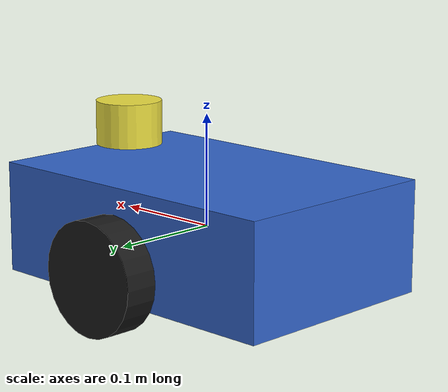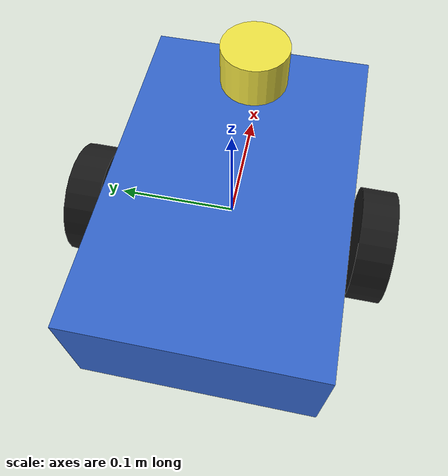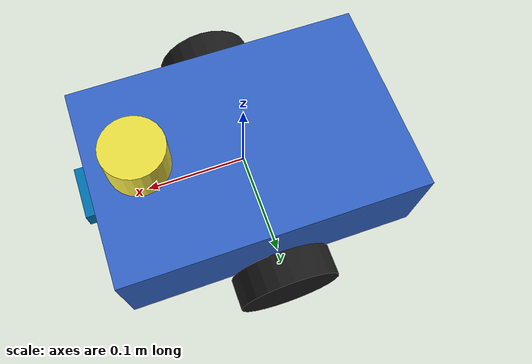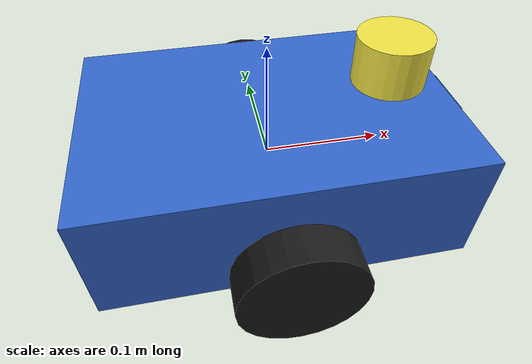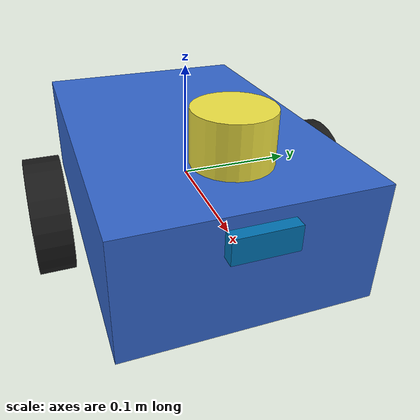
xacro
<?xml version="1.0"?>
<robot name="mi_robot" xmlns:xacro="http://www.ros.org/wiki/xacro">

  <xacro:property name="rueda_radio" value="0.05"/>
  <xacro:property name="rueda_ancho" value="0.03"/>
  <xacro:property name="separacion_ruedas" value="0.25"/>

  <link name="base_link">
    <visual>
      <geometry><box size="0.3 0.2 0.1"/></geometry>
      <material name="azul"><color rgba="0.2 0.4 0.8 1"/></material>
    </visual>
    <collision>
      <geometry><box size="0.3 0.2 0.1"/></geometry>
    </collision>
    <inertial>
      <mass value="1.0"/>
      <inertia ixx="0.01" ixy="0.0" ixz="0.0" iyy="0.01" iyz="0.0" izz="0.01"/>
    </inertial>
  </link>

  <xacro:macro name="rueda" params="prefijo y_signo">
    <link name="rueda_${prefijo}">
      <visual>
        <geometry><cylinder radius="${rueda_radio}" length="${rueda_ancho}"/></geometry>
        <material name="negro"><color rgba="0.1 0.1 0.1 1"/></material>
      </visual>
      <collision>
        <geometry><cylinder radius="${rueda_radio}" length="${rueda_ancho}"/></geometry>
      </collision>
      <inertial>
        <mass value="0.1"/>
        <inertia ixx="0.0005" ixy="0.0" ixz="0.0" iyy="0.0005" iyz="0.0" izz="0.0005"/>
      </inertial>
    </link>

    <joint name="joint_rueda_${prefijo}" type="continuous">
      <parent link="base_link"/>
      <child link="rueda_${prefijo}"/>
      <origin xyz="0 ${y_signo * separacion_ruedas/2} -0.02" rpy="1.5708 0 0"/>
      <axis xyz="0 0 1"/>
    </joint>
  </xacro:macro>

  <xacro:rueda prefijo="izq" y_signo="1"/>
  <xacro:rueda prefijo="der" y_signo="-1"/>

  <gazebo>
    <plugin filename="gz-sim-diff-drive-system" name="gz::sim::systems::DiffDrive">
      <left_joint>joint_rueda_izq</left_joint>
      <right_joint>joint_rueda_der</right_joint>
      <wheel_separation>${separacion_ruedas}</wheel_separation>
      <wheel_radius>${rueda_radio}</wheel_radius>
      <odom_publish_frequency>30</odom_publish_frequency>
      <topic>cmd_vel</topic>
      <odom_topic>odom</odom_topic>
      <frame_id>odom</frame_id>
      <child_frame_id>base_link</child_frame_id>
  </plugin>
  </gazebo>

<link name="lidar_link">
  <visual><geometry><cylinder radius="0.03" length="0.04"/></geometry></visual>
  <collision><geometry><cylinder radius="0.03" length="0.04"/></geometry></collision>
  <inertial><mass value="0.05"/><inertia ixx="0.0001" ixy="0" ixz="0" iyy="0.0001" iyz="0" izz="0.0001"/></inertial>
</link>
<joint name="joint_lidar" type="fixed">
  <parent link="base_link"/>
  <child link="lidar_link"/>
  <origin xyz="0.1 0 0.08" rpy="0 0 0"/>
</joint>

<link name="camera_link">
  <visual><geometry><box size="0.02 0.05 0.02"/></geometry></visual>
  <collision><geometry><box size="0.02 0.05 0.02"/></geometry></collision>
  <inertial><mass value="0.02"/><inertia ixx="0.0001" ixy="0" ixz="0" iyy="0.0001" iyz="0" izz="0.0001"/></inertial>
</link>
<joint name="joint_camera" type="fixed">
  <parent link="base_link"/>
  <child link="camera_link"/>
  <origin xyz="0.15 0 0.03" rpy="0 0 0"/>
</joint>

  <gazebo reference="lidar_link">
    <sensor name="lidar" type="gpu_lidar">
      <gz_frame_id>lidar_link</gz_frame_id> # lo agregamos porque sino el frame_id que publica el sensor es "lidar" y no "lidar_link"
      <topic>scan</topic>
      <update_rate>10</update_rate>
      <lidar>
        <scan>
          <horizontal>
            <samples>360</samples>
            <min_angle>-3.14159</min_angle>
            <max_angle>3.14159</max_angle>
          </horizontal>
        </scan>
        <range>
          <min>0.1</min>
          <max>10.0</max>
        </range>
      </lidar>
    </sensor>
  </gazebo>

  <gazebo reference="camera_link">
    <sensor name="camara" type="camera">
      <gz_frame_id>camera_link</gz_frame_id> # también lo agregamos para que el frame_id que publica el sensor sea "camera_link" y no "camara"
      <topic>image_raw</topic>
      <update_rate>30</update_rate>
      <camera>
        <horizontal_fov>1.047</horizontal_fov>
        <image><width>640</width><height>480</height></image>
        <clip><near>0.1</near><far>20</far></clip>
      </camera>
    </sensor>
  </gazebo>

  <gazebo>
    <plugin filename="gz-sim-joint-state-publisher-system" name="gz::sim::systems::JointStatePublisher">
      <topic>joint_states</topic>
    </plugin>
  </gazebo>

</robot>
